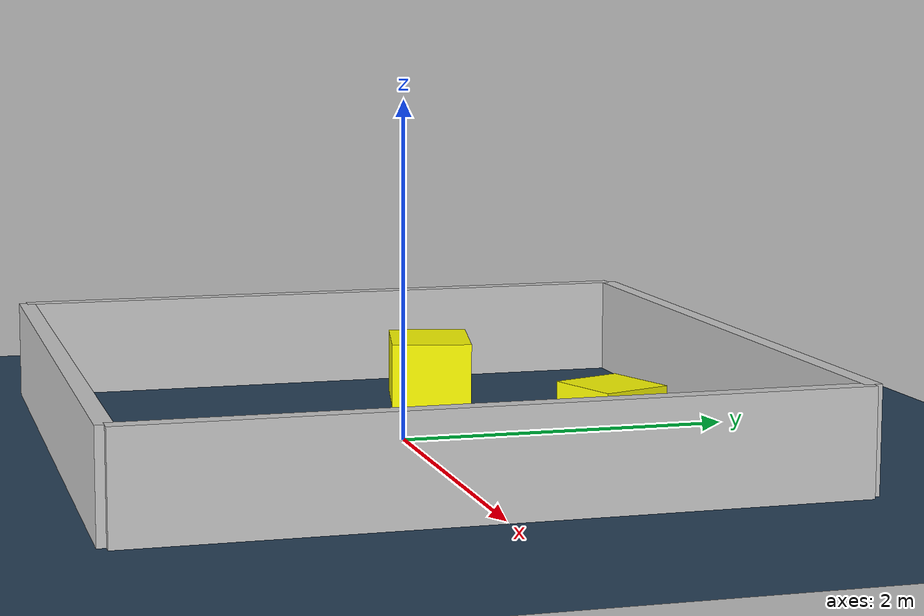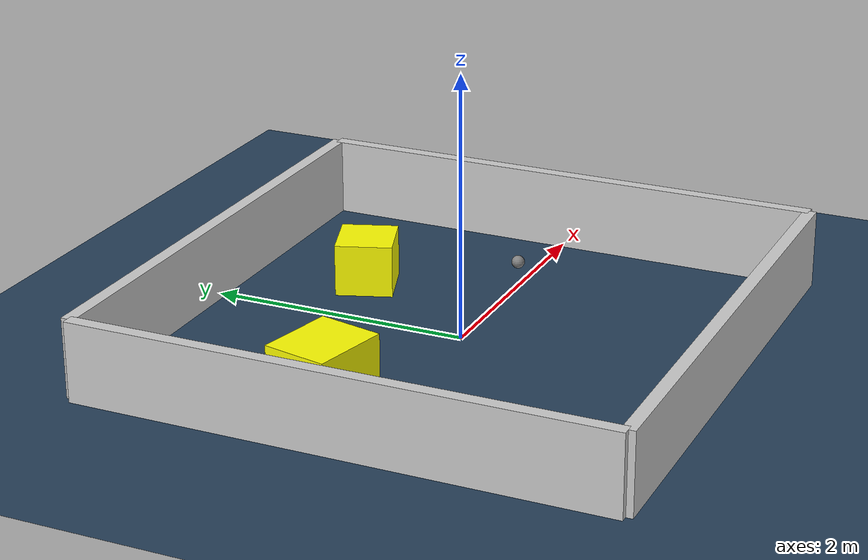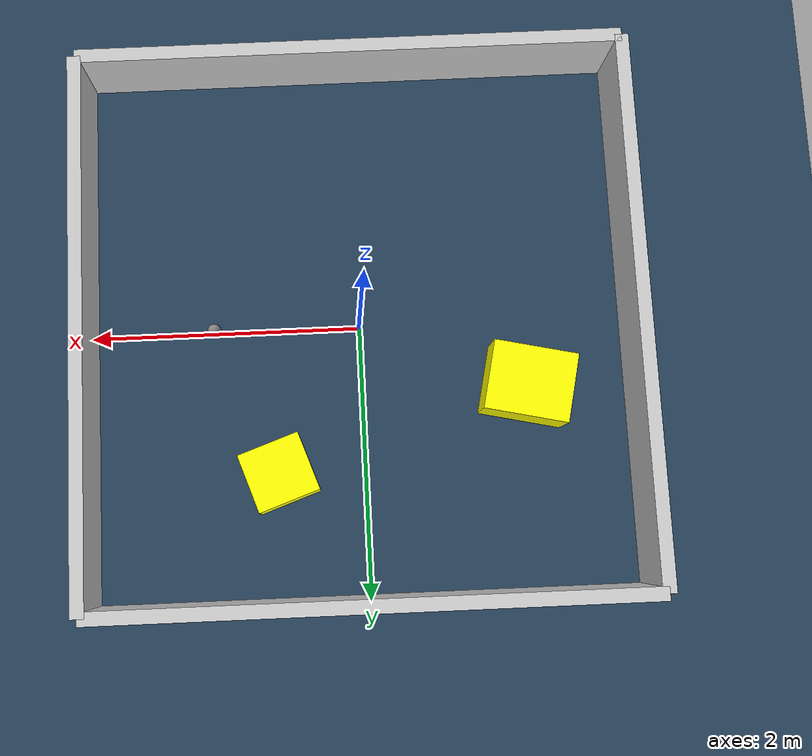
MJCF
<?xml version="1.0" ?>
<mujoco model="generated_environment">
  <option timestep="0.01" integrator="RK4" cone="elliptic"/>
  <default>
    <geom density="1"/>
  </default>
  <asset>
    <texture builtin="gradient" height="3072" rgb1="0.3 0.5 0.7" rgb2="0 0 0" type="skybox" width="512"/>
    <texture builtin="checker" height="300" mark="edge" markrgb="0.8 0.8 0.8" name="groundplane" rgb1="0.2 0.3 0.4" rgb2="0.1 0.2 0.3" type="2d" width="300"/>
    <material name="groundplane" reflectance="0.2" texrepeat="5 5" texture="groundplane" texuniform="true"/>
    <material name="robot" rgba="0.0 1.0 0.0 1"/>
  </asset>
  <worldbody>
    <light dir="0 0 -1" directional="true" pos="0 0 1.5"/>
    <geom condim="4" friction="1.0 0.005 0.001" material="groundplane" name="floor" size="0 0 0.05" type="plane"/>
    <body name="walls">
      <geom name="wall_1" condim="4" pos="-2.0 0.0 0.3" rgba="0.800000011920929 0.800000011920929 0.800000011920929 1.0" size="0.05 2.0 0.3" type="box"/>
      <geom name="wall_2" condim="4" pos="2.0 0.0 0.3" rgba="0.800000011920929 0.800000011920929 0.800000011920929 1.0" size="0.05 2.0 0.3" type="box"/>
      <geom name="wall_3" condim="4" pos="0.0 -2.0 0.3" rgba="0.800000011920929 0.800000011920929 0.800000011920929 1.0" size="2.0 0.05 0.3" type="box"/>
      <geom name="wall_4" condim="4" pos="0.0 2.0 0.3" rgba="0.800000011920929 0.800000011920929 0.800000011920929 1.0" size="2.0 0.05 0.3" type="box"/>
    </body>
    <body name="robot">
      <joint name="joint_x" type="slide" pos="0 0 0" axis="1 0 0"/>
      <joint name="joint_y" type="slide" pos="0 0 0" axis="0 1 0"/>
      <geom name="robot" type="sphere" pos="1.0648478193485036 0.00032820208964734476 0.2" size="0.05" mass="5." friction="1.0 0.005 0.0001" condim="4"/>
      <site name="sensor_ball"/>
    </body>
    <body name="obstacle_1_movable">
      <geom name="obstacle_1_movable" condim="4" pos="0.6214007273962083 1.0642194269798422 0.2" euler="0 0 289.4172159898014" friction="1.0 0.005 0.001" rgba="1 1 0 1" size="0.21719918566397373 0.229737053683277 0.2" type="box" mass="0.1"/>
      <joint type="free"/>
    </body>
    <body name="obstacle_2_movable">
      <geom name="obstacle_2_movable" condim="4" pos="-1.203288312453993 0.49184762885462696 0.2" euler="0 0 257.52640455926013" friction="1.0 0.005 0.001" rgba="1 1 0 1" size="0.2511179553231452 0.30544681125444173 0.2" type="box" mass="0.1"/>
      <joint type="free"/>
    </body>
  </worldbody>
  <actuator>
    <motor name="actuator_x" joint="joint_x" gear="1" ctrlrange="-1 1"/>
    <motor name="actuator_y" joint="joint_y" gear="1" ctrlrange="-1 1"/>
  </actuator>
</mujoco>
